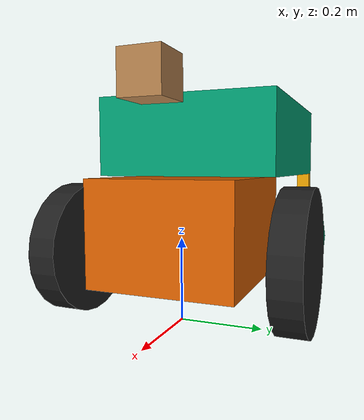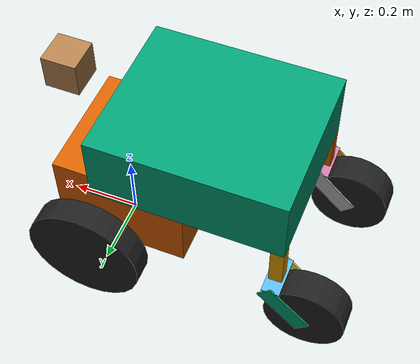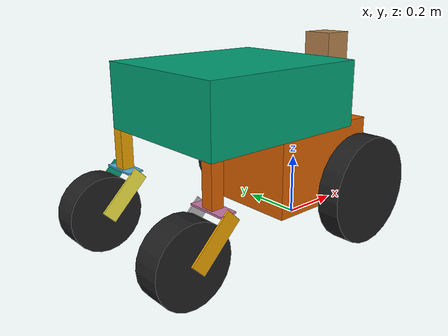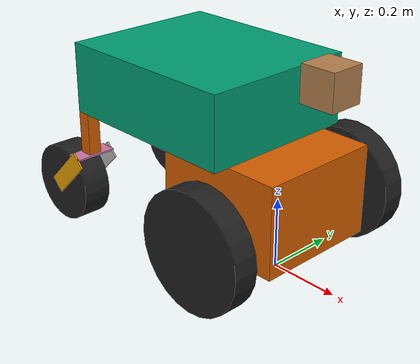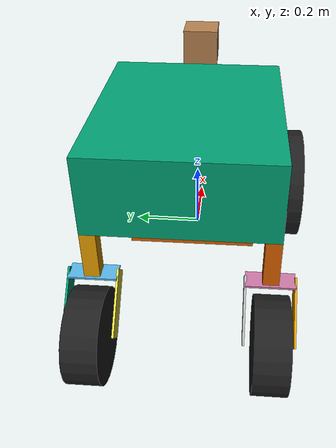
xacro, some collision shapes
<?xml version="1.0"?>
<robot
     xmlns:xacro="http://www.ros.org/wiki/xacro" name="mobot">
     <!-- define the base-link origin to lie at floor level, between the drive wheels-->
     <!--main body is a simple box; origin is a center of box-->
    <xacro:property name="bodylen" value="0.5461" />
    <xacro:property name="bodywidth" value="0.4572" />
    <xacro:property name="bodyheight" value="0.2" />
    <xacro:property name="bodyclearance" value="0.4" />  <!--clearance from bottom of box to ground-->
    <!-- derived values-->
    <xacro:property name="half_bodylen" value="${bodylen/2.0}" />
    <xacro:property name="half_bodyheight" value="${bodyheight/2.0}" />
    <!-- placement of main body relative to base link frame -->
    <xacro:property name="bodyOX" value="${-half_bodylen}" />
    <xacro:property name="bodyOY" value="0" />
    <xacro:property name="bodyOZ" value="0.45" />

    <!-- define the drive-wheel dimensions-->
    <xacro:property name="tirediam" value="0.3302" />
    <xacro:property name="tirerad" value="${tirediam/2.0}" />
    <xacro:property name="tirewidth" value="0.06985" />
    <!-- "track" is the distance between the drive wheels -->
    <xacro:property name="track" value=".56515" />

    <!-- battery box dimensions -->
    <xacro:property name="batterylen" value="0.381" />
    <xacro:property name="batterywidth" value="0.3556" />
    <xacro:property name="batteryheight" value="0.254" />
    <!-- placement of battery box relative to base frame -->
    <xacro:property name="batOX" value="-0.05" />
    <xacro:property name="batOY" value="0" />
    <xacro:property name="batOZ" value="0.22" />

    <xacro:property name="M_PI" value="3.1415926535897931" />
    <xacro:property name="boschwidth" value="0.0381" />
    <xacro:property name="casterdrop" value="0.125" />
    <xacro:property name="bracketwidth" value="0.1175" />
    <xacro:property name="bracketheight" value="0.16" />
    <xacro:property name="bracketthick" value="0.0508" />
    <xacro:property name="bracketangle" value="0.7854" />
    <xacro:property name="casterwidth" value="0.0826" />
    <xacro:property name="casterdiam" value="0.2286" />

    <!--here is a default inertia matrix with small, but legal values; use this when don't need accuracy for I -->
    <!--model will assign inertia matrix dominated by main body box -->
    <xacro:macro name="default_inertial" params="mass">
        <inertial>
            <mass value="${mass}" />
            <inertia ixx="0.01" ixy="0.0" ixz="0.0"
         iyy="0.01" iyz="0.0"
         izz="0.01" />
        </inertial>
    </xacro:macro>
    <xacro:macro name="wheel" params="prefix reflect">
        <link name="${prefix}_wheel">
            <visual>
                <geometry>
                    <cylinder radius="${tirerad}" length="${tirewidth}"/>
                </geometry>
            </visual>
            <collision>
                <geometry>
                    <cylinder radius="${tirerad}" length="${tirewidth}"/>
                </geometry>
            </collision>
            <inertial>
            <!--assign inertial properties to drive wheels -->
            <mass value="1" />
            <inertia ixx="0.1" ixy="0" ixz="0"
              iyy="0.1" iyz="0"
              izz="0.1" />
        </inertial>
        </link>
        <joint name="${prefix}_wheel_joint" type="continuous">
            <axis xyz="0 0 1"/>
            <parent link="base_link"/>
            <child link="${prefix}_wheel"/>
            <origin xyz="0 ${reflect*track/2} ${tirerad}" rpy="0 ${M_PI/2} ${M_PI/2}"/>
            <limit effort="100" velocity="15" />
            <joint_properties damping="0.0" friction="0.0" />
        </joint>
    </xacro:macro>
    <xacro:macro name="caster" params="prefix reflect">
        <link name="castdrop_${prefix}">
            <visual>
                <geometry>
                    <box size="${boschwidth} ${boschwidth} ${casterdrop}"/>
                </geometry>
                <origin xyz="0 0 0" rpy="0 0 0"/>
            </visual>
            <collision>
                <geometry>
                    <box size="${boschwidth} ${boschwidth} ${casterdrop}"/>
                </geometry>
                <origin xyz="0 0 0" rpy="0 0 0"/>
            </collision>
            <xacro:default_inertial mass="0.2"/>
        </link>
        <joint name="cast2base_${prefix}" type="fixed">
            <parent link="base_link"/>
            <child link="castdrop_${prefix}"/>
            <origin xyz="${-bodylen/2+bodyOX+boschwidth/2} ${reflect*bodywidth/2-reflect*boschwidth/2} ${-casterdrop/2-bodyheight/2+bodyOZ}" />
        </joint>
        <link name="brackettop_${prefix}">
            <visual>
                <geometry>
                    <box size="${bracketwidth} ${bracketthick} .005"/>
                </geometry>
                <origin xyz="0 0 0" rpy="0 0 0"/>
            </visual>
            <collision>
                <geometry>
                    <box size="${bracketwidth} ${bracketthick} .005"/>
                </geometry>
                <origin xyz="0 0 0" rpy="0 0 0"/>
            </collision>
            <xacro:default_inertial mass="0.2"/>
        </link>
        <joint name="cast2bracket_${prefix}" type="continuous">
            <axis xyz="0 0 1"/>
            <parent link="castdrop_${prefix}"/>
            <child link="brackettop_${prefix}"/>
            <origin xyz="0 0 ${-casterdrop/2}" rpy="0 0 ${M_PI/2}"/>
            <joint_properties damping="0.0" friction="0.0" />
        </joint>
        <link name="bracketside1_${prefix}">
            <visual>
                <geometry>
                    <box size="${bracketthick} ${bracketheight} .005"/>
                </geometry>
                <origin xyz="0 0 0" rpy="${M_PI/2} ${-bracketangle} ${M_PI/2}"/>
            </visual>
            <collision>
                <geometry>
                    <box size="${bracketthick} ${bracketheight} .005"/>
                </geometry>
                <origin xyz="0 0 0" rpy="${M_PI/2} ${-bracketangle} ${M_PI/2}"/>
            </collision>
            <xacro:default_inertial mass="0.2"/>
        </link>
        <joint name="brack2top1_${prefix}" type="fixed">
            <parent link="brackettop_${prefix}"/>
            <child link="bracketside1_${prefix}"/>
            <origin xyz="${bracketwidth/2} .04 -${bracketheight/2-.02}" rpy="0 0 0" />
        </joint>
        <link name="bracketside2_${prefix}">
            <visual>
                <geometry>
                    <box size="${bracketthick} ${bracketheight} .005"/>
                </geometry>
                <origin xyz="0 0 0" rpy="${M_PI/2} ${-bracketangle} ${M_PI/2}"/>
            </visual>
            <collision>
                <geometry>
                    <box size="${bracketthick} ${bracketheight} .005"/>
                </geometry>
                <origin xyz="0 0 0" rpy="${M_PI/2} ${-bracketangle} ${M_PI/2}"/>
            </collision>
            <xacro:default_inertial mass="0.2"/>
        </link>
        <joint name="brack2top2_${prefix}" type="fixed">
            <parent link="brackettop_${prefix}"/>
            <child link="bracketside2_${prefix}"/>
            <origin xyz="${-bracketwidth/2} .04 -${bracketheight/2-.02}" rpy="0 0 0" />
        </joint>
        <link name="${prefix}_casterwheel">
            <visual>
                <geometry>
                    <cylinder radius="${casterdiam/2}" length="${casterwidth}"/>
                </geometry>
            </visual>
            <collision>
                <geometry>
                    <cylinder radius="${casterdiam/2}" length="${casterwidth}"/>
                </geometry>
            </collision>
            <!-- accept default inertial properties for caster wheels-->
            <xacro:default_inertial mass="0.5"/>
        </link>
        <joint name="${prefix}_caster_joint" type="continuous">
            <axis xyz="0 0 1"/>
            <parent link="bracketside1_${prefix}"/>
            <child link="${prefix}_casterwheel"/>
            <origin xyz="${-casterwidth/2-.02} .053 -.053" rpy="0 ${M_PI/2} 0"/>
            <limit effort="100" velocity="15" />
            <joint_properties damping="0.0" friction="0.0" />
        </joint>
    </xacro:macro>

    <xacro:caster prefix="left" reflect="1"/>
    <xacro:caster prefix="right" reflect="-1"/>

    <link name="base_link">
        <visual>
            <geometry>
                <box size="${bodylen} ${bodywidth} ${bodyheight}"/>
            </geometry>
            <origin xyz="${bodyOX} ${bodyOY} ${bodyOZ}" rpy="0 0 0"/>
        </visual>
        <collision>
            <geometry>
                <box size="${bodylen} ${bodywidth} ${bodyheight}"/>
            </geometry>
            <origin xyz="${bodyOX} ${bodyOY} ${bodyOZ}" rpy="0 0 0"/>
        </collision>
        <inertial>
            <!--assign almost all the mass to the main body box; set m= 100kg; treat I as approx m*r^2 -->
            <mass value="100" />
            <inertia ixx="10" ixy="0" ixz="0"
              iyy="10" iyz="0"
              izz="10" />
        </inertial>
    </link>

    <xacro:wheel prefix="left" reflect="1"/>
    <xacro:wheel prefix="right" reflect="-1"/>
    <link name="batterybox">
        <visual>
            <geometry>
                <box size="${batterylen} ${batterywidth} ${batteryheight}"/>
            </geometry>
            <origin xyz="0 0 0" rpy="0 0 0"/>
        </visual>
        <collision>
            <geometry>
                <box size="${batterylen} ${batterywidth} ${batteryheight}"/>
            </geometry>
            <origin xyz="0 0 0" rpy="0 0 0"/>
        </collision>
        <xacro:default_inertial mass="1"/>
    </link>
    <joint name="batterytobase" type="fixed">
        <parent link="base_link"/>
        <child link="batterybox"/>
        <origin xyz="${batOX} ${batOY} ${batOZ}" rpy="0 0 0"/>
    </joint>
 <gazebo>
  <plugin name="differential_drive_controller" filename="libgazebo_ros_diff_drive.so">
    <alwaysOn>true</alwaysOn>
    <updateRate>100</updateRate>
    <leftJoint>right_wheel_joint</leftJoint>
    <rightJoint>left_wheel_joint</rightJoint>
    <wheelSeparation>${track}</wheelSeparation>
    <wheelDiameter>${tirediam}</wheelDiameter>
    <torque>200</torque>
    <commandTopic>cmd_vel</commandTopic>
    <odometryTopic>odom</odometryTopic>
    <odometryFrame>odom</odometryFrame>
    <robotBaseFrame>base_link</robotBaseFrame>
    <!--don't publish wheel TF, so it does not conflict with robot_state_publisher -->
    <publishWheelTF>false</publishWheelTF>
    <publishWheelJointState>true</publishWheelJointState>
  </plugin>
 </gazebo>

  <gazebo reference="right_wheel">
    <mu1>100000.0</mu1>
    <mu2>100000.0</mu2>
    <material>Gazebo/Black</material>
  </gazebo>
  <gazebo reference="left_wheel">
    <mu1>100000.0</mu1>
    <mu2>100000.0</mu2>
    <material>Gazebo/Black</material>
  </gazebo>

  <gazebo reference="right_casterwheel">
    <mu1>100000.0</mu1>
    <mu2>100000.0</mu2>
    <material>Gazebo/Black</material>
  </gazebo>

  <gazebo reference="left_casterwheel">
    <mu1>100000.0</mu1>
    <mu2>100000.0</mu2>
    <material>Gazebo/Black</material>
  </gazebo>
  <gazebo>
     <plugin name="joint_state_publisher" filename="libgazebo_ros_joint_state_publisher.so">
       <jointName>cast2bracket_right, cast2bracket_left, right_caster_joint, left_caster_joint </jointName>
     </plugin>
  </gazebo>

  <!-- add a simulated lidar, including visual, collision and inertial properties, and physics simulation-->
  <link name="lidar_link">
      <collision>
          <origin xyz="0 0 0" rpy="0 0 0"/>
          <geometry>
              <!-- coarse LIDAR model; a simple box -->
              <box size="0.1 0.1 0.1"/>
          </geometry>
      </collision>

      <visual>
          <origin xyz="0 0 0" rpy="0 0 0" />
          <geometry>
              <mesh filename="package://mobot_urdf/meshes/hokuyo.dae"/>
          </geometry>
          <material name="sick_grey">
              <color rgba="0.7 0.5 0.3 1.0"/>
          </material>
      </visual>

      <inertial>
          <mass value="1e-5" />
          <origin xyz="0 0 0" rpy="0 0 0"/>
          <inertia ixx="1e-6" ixy="0" ixz="0" iyy="1e-6" iyz="0" izz="1e-6" />
      </inertial>
  </link>
  <!--the above displays a box meant to imply Lidar-->

  <joint name="lidar_joint" type="fixed">
      <axis xyz="0 1 0" />
      <origin xyz="0.15 0 0.56" rpy="0 0 0"/>
      <parent link="base_link"/>
      <child link="lidar_link"/>
  </joint>
    <!-- here is the gazebo plug-in to simulate a lidar sensor -->
  <gazebo reference="lidar_link">
    <sensor type="ray" name="head_hokuyo_sensor">
    <!--sensor type="gpu_ray" name="sick_lidar_sensor"-->
      <pose>0 0 0 0 0 0</pose>
      <visualize>true</visualize>
      <update_rate>40</update_rate>
      <ray>
        <scan>
          <horizontal>
            <samples>720</samples>
            <resolution>1</resolution>
            <min_angle>-1.570796</min_angle>
            <max_angle>1.570796</max_angle>
          </horizontal>
        </scan>
        <range>
          <min>0.10</min>
          <max>30.0</max>
          <resolution>0.01</resolution>
        </range>
        <noise>
          <type>gaussian</type>
          <mean>0.0</mean>
          <stddev>0.01</stddev>
        </noise>
      </ray>
      <!--plugin name="gazebo_ros_lidar_controller" filename="libgazebo_ros_gpu_laser.so"-->
      <plugin name="gazebo_ros_head_hokuyo_controller" filename="libgazebo_ros_gpu_laser.so">
        <topicName>/scan</topicName>
        <frameName>lidar_link</frameName>
      </plugin>
    </sensor>
  </gazebo>
</robot>
